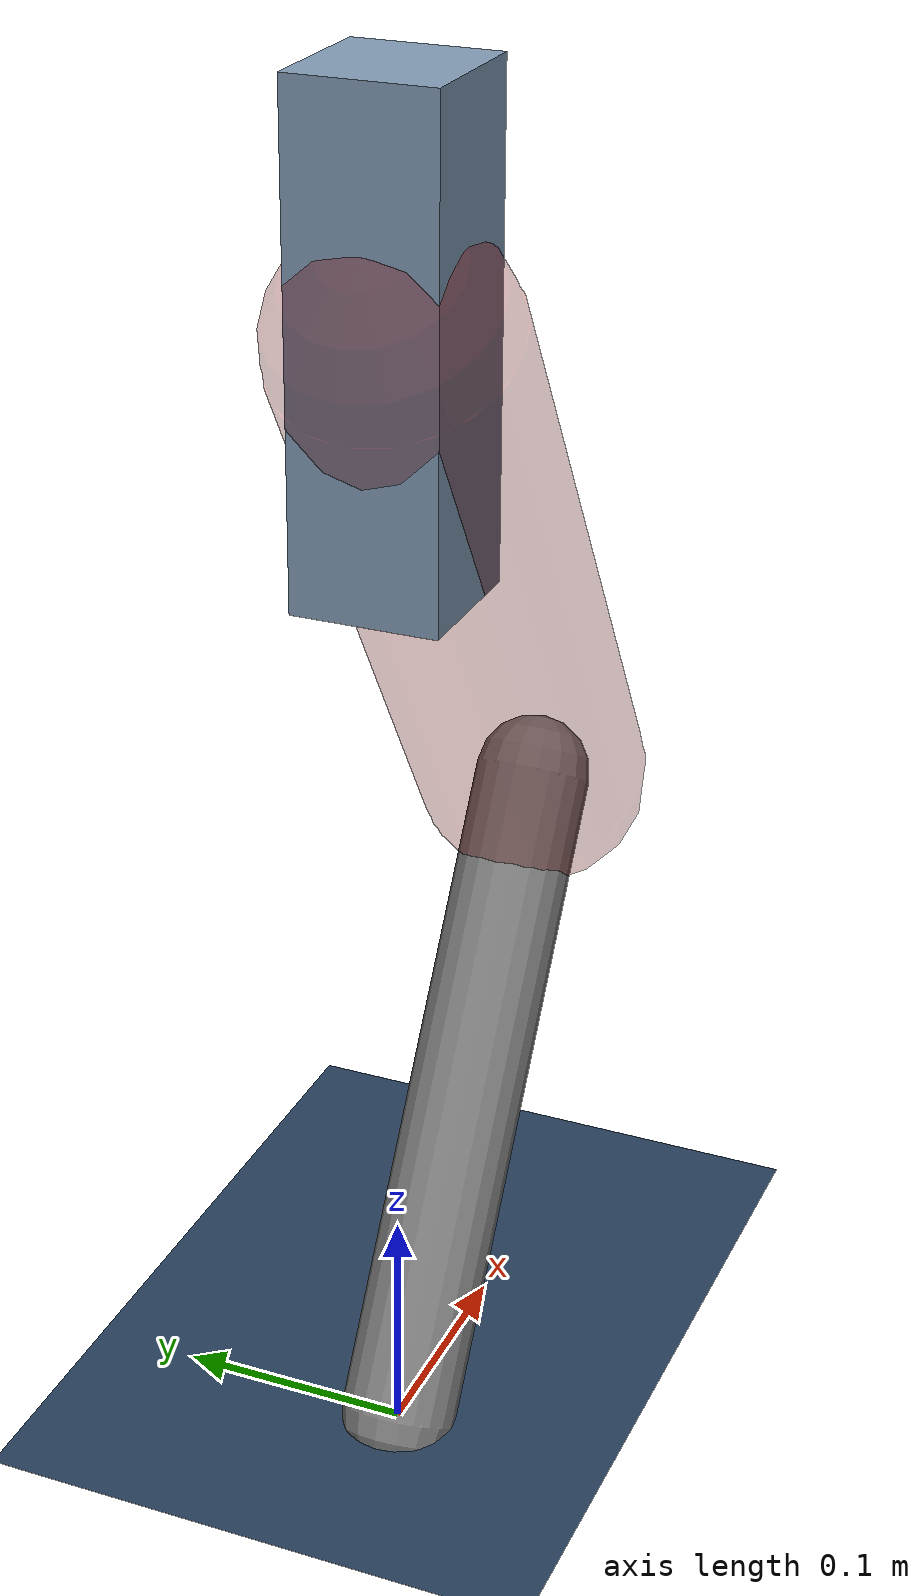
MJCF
<mujoco model="Hopper2D">
	<compiler inertiafromgeom="true" angle="radian" />
	<option timestep="0.001" integrator="implicit" cone="elliptic" solver="Newton" tolerance="1e-10" />

	<default>
		<geom contype="1" conaffinity="1" condim="3" friction="2 0.005 0.0001" solref="0.005 1" />
		<joint limited="true" damping="0.1" />
	</default>

	<asset>
		<texture name="skybox" type="skybox" builtin="gradient" rgb1=".4 .6 .8" rgb2="0 0 0" width="800" height="800" />
		<texture name="grid" type="2d" builtin="checker" rgb1=".1 .2 .3" rgb2=".2 .3 .4" width="300" height="300" mark="edge" markrgb=".2 .3 .4" />
		<material name="ground" texture="grid" texrepeat="1 1" texuniform="true" reflectance="0.1" />
		<material name="leg" rgba="0.5 0.6 0.7 1" />
	</asset>

	<worldbody>

		<geom name="floor" type="plane" size="5 5 0.25" material="ground" />

		<light directional="false" diffuse="0.8 0.8 0.8" specular="0.3 0.3 0.3" pos="0 0 2" dir="0 0 -1" />
		<light mode="targetbodycom" target="base" directional="false" diffuse="0.8 0.8 0.8" specular="0.3 0.3 0.3" pos="0 0 2" dir="0 0 -1" />

		<camera name="fixed" pos="0 -2 1" xyaxes="1 0 0 0 0 1" />
		<camera name="tracking" mode="trackcom" pos="0 -3 1" />

		<body name="root" pos="0 0 0.4861085554663549">
			<joint name="slide_x" type="slide" axis="1 0 0" range="-100 100" />
			<joint name="slide_z" type="slide" axis="0 0 1" range="0 10" />

			<body name="base" pos="0 0 0">
				<geom name="torso" type="box" size="0.03 0.03 0.1" mass="2.431" material="leg" />

				<body name="link1" pos="0 0 0" euler="0 1.0122699926824936 0">
					<joint type="hinge" axis="0 -1 0" pos="0 0 0" name="hinge1" limited="true" range="-3.14 3.14" stiffness="0" damping="0.1" />
					<geom name="thigh" type="capsule" fromto="0 0 0 0.28430150657114134 0 0" size="0.05" rgba="0.5 0 0 0.3" mass="0.9465839170849676" />

					<body name="link2" pos="0.28430150657114134 0 0" euler="0 1.1098446327696305 0">
						<joint type="hinge" axis="0 -1 0" pos="0 0 0" name="hinge2" limited="true" range="-3.14 3.14" stiffness="0" damping="0.1" />
						<geom name="shank" type="capsule" fromto="0 0 0 0.2876266453482351 0 0" size="0.025" mass="0.47336398081341163" />

					</body>
				</body>
			</body>
		</body>
	</worldbody>

	<actuator>
		<motor name="torque1" joint="hinge1" ctrlrange="-42.66453271454593 42.66453271454593" ctrllimited="true" gear="1" />
		<motor name="torque2" joint="hinge2" ctrlrange="-85.74642121907154 85.74642121907154" ctrllimited="true" gear="1" />
	</actuator>
</mujoco>
